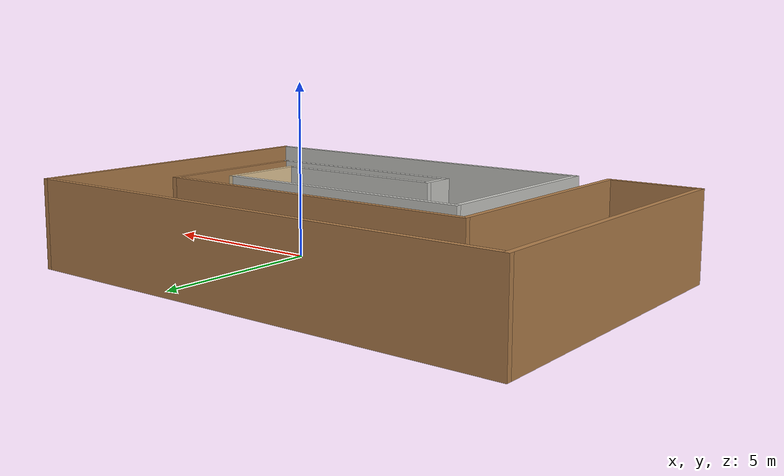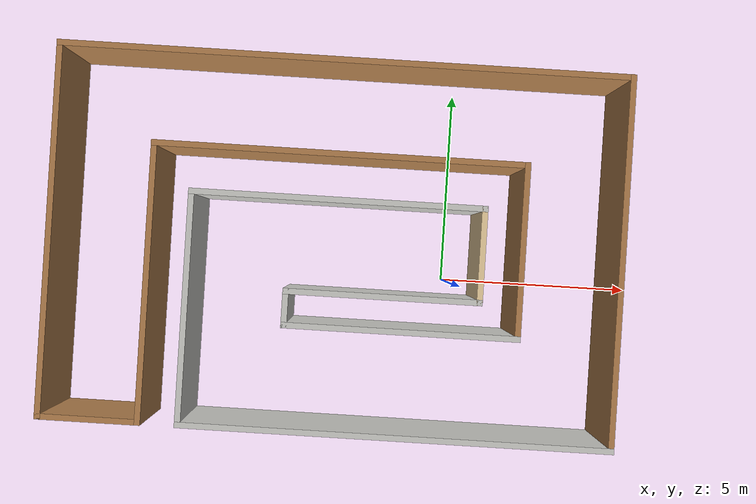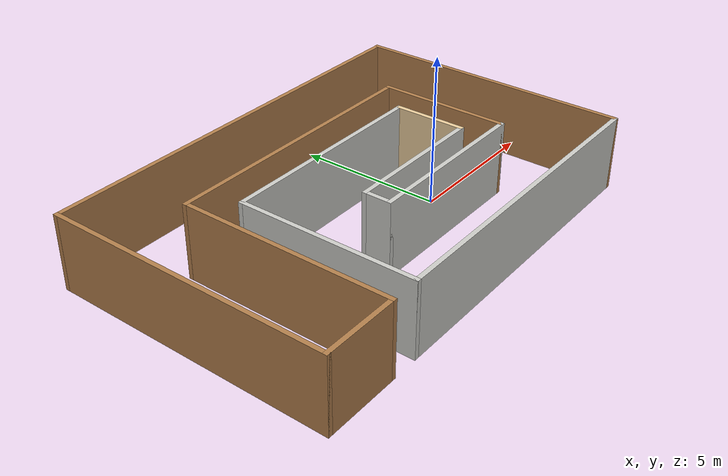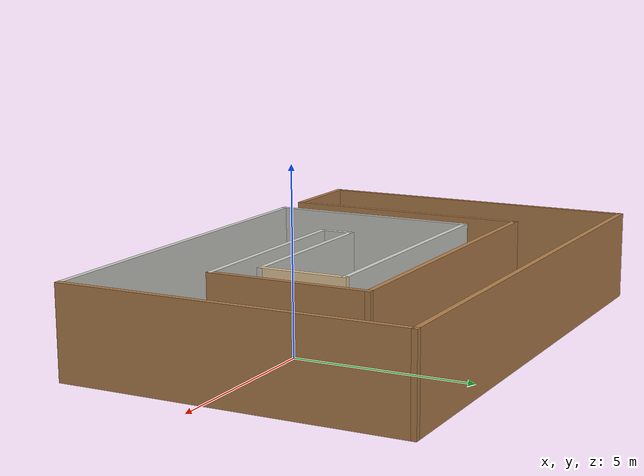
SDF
<?xml version='1.0'?>
<sdf version='1.6'>
  <model name='Play7'>
    <pose frame=''>-2.885 0.715 0 0 -0 0</pose>
    <link name='Wall_0'>
      <collision name='Wall_0_Collision'>
        <geometry>
          <box>
            <size>2.5 0.15 2.5</size>
          </box>
        </geometry>
        <pose frame=''>0 0 1.25 0 -0 0</pose>
      </collision>
      <visual name='Wall_0_Visual'>
        <pose frame=''>0 0 1.25 0 -0 0</pose>
        <geometry>
          <box>
            <size>2.5 0.15 2.5</size>
          </box>
        </geometry>
        <material>
          <script>
            <uri>file://media/materials/scripts/gazebo.material</uri>
            <name>Gazebo/Grey</name>
          </script>
          <ambient>0.921569 0.807843 0.615686 1</ambient>
        </material>
        <meta>
          <layer>0</layer>
        </meta>
      </visual>
      <pose frame=''>3.675 0 0 0 0 -1.5708</pose>
    </link>
    <link name='Wall_10'>
      <collision name='Wall_10_Collision'>
        <geometry>
          <box>
            <size>6 0.15 2.5</size>
          </box>
        </geometry>
        <pose frame=''>0 0 1.25 0 -0 0</pose>
      </collision>
      <visual name='Wall_10_Visual'>
        <pose frame=''>0 0 1.25 0 -0 0</pose>
        <geometry>
          <box>
            <size>6 0.15 2.5</size>
          </box>
        </geometry>
        <material>
          <script>
            <uri>file://media/materials/scripts/gazebo.material</uri>
            <name>Gazebo/CeilingTiled</name>
          </script>
          <ambient>0.921569 0.807843 0.615686 1</ambient>
        </material>
        <meta>
          <layer>0</layer>
        </meta>
      </visual>
      <pose frame=''>1.75 -2.025 0 0 -0 0</pose>
    </link>
    <link name='Wall_13'>
      <collision name='Wall_13_Collision'>
        <geometry>
          <box>
            <size>11 0.15 2.5</size>
          </box>
        </geometry>
        <pose frame=''>0 0 1.25 0 -0 0</pose>
      </collision>
      <visual name='Wall_13_Visual'>
        <pose frame=''>0 0 1.25 0 -0 0</pose>
        <geometry>
          <box>
            <size>11 0.15 2.5</size>
          </box>
        </geometry>
        <material>
          <script>
            <uri>file://media/materials/scripts/gazebo.material</uri>
            <name>Gazebo/CeilingTiled</name>
          </script>
          <ambient>0.921569 0.807843 0.615686 1</ambient>
        </material>
        <meta>
          <layer>0</layer>
        </meta>
      </visual>
      <pose frame=''>1.75 -4.675 0 0 -0 0</pose>
    </link>
    <link name='Wall_15'>
      <collision name='Wall_15_Collision'>
        <geometry>
          <box>
            <size>9.5 0.15 2.5</size>
          </box>
        </geometry>
        <pose frame=''>0 0 1.25 0 -0 0</pose>
      </collision>
      <visual name='Wall_15_Visual'>
        <pose frame=''>0 0 1.25 0 -0 0</pose>
        <geometry>
          <box>
            <size>9.5 0.15 2.5</size>
          </box>
        </geometry>
        <material>
          <script>
            <uri>file://media/materials/scripts/gazebo.material</uri>
            <name>Gazebo/Wood</name>
          </script>
          <ambient>1 1 1 1</ambient>
        </material>
        <meta>
          <layer>0</layer>
        </meta>
      </visual>
      <pose frame=''>7.175 0 0 0 -0 1.5708</pose>
    </link>
    <link name='Wall_17'>
      <collision name='Wall_17_Collision'>
        <geometry>
          <box>
            <size>4.5 0.15 2.5</size>
          </box>
        </geometry>
        <pose frame=''>0 0 1.25 0 -0 0</pose>
      </collision>
      <visual name='Wall_17_Visual'>
        <pose frame=''>0 0 1.25 0 -0 0</pose>
        <geometry>
          <box>
            <size>4.5 0.15 2.5</size>
          </box>
        </geometry>
        <material>
          <script>
            <uri>file://media/materials/scripts/gazebo.material</uri>
            <name>Gazebo/Wood</name>
          </script>
          <ambient>1 1 1 1</ambient>
        </material>
        <meta>
          <layer>0</layer>
        </meta>
      </visual>
      <pose frame=''>4.675 0.15 0 0 -0 1.5708</pose>
    </link>
    <link name='Wall_2'>
      <collision name='Wall_2_Collision'>
        <geometry>
          <box>
            <size>5 0.15 2.5</size>
          </box>
        </geometry>
        <pose frame=''>0 0 1.25 0 -0 0</pose>
      </collision>
      <visual name='Wall_2_Visual'>
        <pose frame=''>0 0 1.25 0 -0 0</pose>
        <geometry>
          <box>
            <size>5 0.15 2.5</size>
          </box>
        </geometry>
        <material>
          <script>
            <uri>file://media/materials/scripts/gazebo.material</uri>
            <name>Gazebo/CeilingTiled</name>
          </script>
          <ambient>0.921569 0.807843 0.615686 1</ambient>
        </material>
        <meta>
          <layer>0</layer>
        </meta>
      </visual>
      <pose frame=''>1.25 -1.175 0 0 -0 3.14159</pose>
    </link>
    <link name='Wall_22'>
      <collision name='Wall_22_Collision'>
        <geometry>
          <box>
            <size>9.5 0.15 2.5</size>
          </box>
        </geometry>
        <pose frame=''>0 0 1.25 0 -0 0</pose>
      </collision>
      <visual name='Wall_22_Visual'>
        <pose frame=''>0 0 1.25 0 -0 0</pose>
        <geometry>
          <box>
            <size>9.5 0.15 2.5</size>
          </box>
        </geometry>
        <material>
          <script>
            <uri>file://media/materials/scripts/gazebo.material</uri>
            <name>Gazebo/Wood</name>
          </script>
          <ambient>1 1 1 1</ambient>
        </material>
        <meta>
          <layer>0</layer>
        </meta>
      </visual>
      <pose frame=''>0 2.325 0 0 -0 3.14159</pose>
    </link>
    <link name='Wall_24'>
      <collision name='Wall_24_Collision'>
        <geometry>
          <box>
            <size>14.5 0.15 2.5</size>
          </box>
        </geometry>
        <pose frame=''>0 0 1.25 0 -0 0</pose>
      </collision>
      <visual name='Wall_24_Visual'>
        <pose frame=''>0 0 1.25 0 -0 0</pose>
        <geometry>
          <box>
            <size>14.5 0.15 2.5</size>
          </box>
        </geometry>
        <material>
          <script>
            <uri>file://media/materials/scripts/gazebo.material</uri>
            <name>Gazebo/Wood</name>
          </script>
          <ambient>1 1 1 1</ambient>
        </material>
        <meta>
          <layer>0</layer>
        </meta>
      </visual>
      <pose frame=''>0 4.675 0 0 -0 3.14159</pose>
    </link>
    <link name='Wall_26'>
      <collision name='Wall_26_Collision'>
        <geometry>
          <box>
            <size>7.15 0.15 2.5</size>
          </box>
        </geometry>
        <pose frame=''>0 0 1.25 0 -0 0</pose>
      </collision>
      <visual name='Wall_26_Visual'>
        <pose frame=''>0 0 1.25 0 -0 0</pose>
        <geometry>
          <box>
            <size>7.15 0.15 2.5</size>
          </box>
        </geometry>
        <material>
          <script>
            <uri>file://media/materials/scripts/gazebo.material</uri>
            <name>Gazebo/Wood</name>
          </script>
          <ambient>1 1 1 1</ambient>
        </material>
        <meta>
          <layer>0</layer>
        </meta>
      </visual>
      <pose frame=''>-4.675 -1.175 0 0 0 -1.5708</pose>
    </link>
    <link name='Wall_28'>
      <collision name='Wall_28_Collision'>
        <geometry>
          <box>
            <size>9.5 0.15 2.5</size>
          </box>
        </geometry>
        <pose frame=''>0 0 1.25 0 -0 0</pose>
      </collision>
      <visual name='Wall_28_Visual'>
        <pose frame=''>0 0 1.25 0 -0 0</pose>
        <geometry>
          <box>
            <size>9.5 0.15 2.5</size>
          </box>
        </geometry>
        <material>
          <script>
            <uri>file://media/materials/scripts/gazebo.material</uri>
            <name>Gazebo/Wood</name>
          </script>
          <ambient>1 1 1 1</ambient>
        </material>
        <meta>
          <layer>0</layer>
        </meta>
      </visual>
      <pose frame=''>-7.175 0 0 0 0 -1.5708</pose>
    </link>
    <link name='Wall_30'>
      <collision name='Wall_30_Collision'>
        <geometry>
          <box>
            <size>2.5 0.15 2.5</size>
          </box>
        </geometry>
        <pose frame=''>0 0 1.25 0 -0 0</pose>
      </collision>
      <visual name='Wall_30_Visual'>
        <pose frame=''>0 0 1.25 0 -0 0</pose>
        <geometry>
          <box>
            <size>2.5 0.15 2.5</size>
          </box>
        </geometry>
        <material>
          <script>
            <uri>file://media/materials/scripts/gazebo.material</uri>
            <name>Gazebo/Wood</name>
          </script>
          <ambient>1 1 1 1</ambient>
        </material>
        <meta>
          <layer>0</layer>
        </meta>
      </visual>
      <pose frame=''>-6 -4.675 0 0 -0 0</pose>
    </link>
    <link name='Wall_4'>
      <collision name='Wall_4_Collision'>
        <geometry>
          <box>
            <size>7.5 0.15 2.5</size>
          </box>
        </geometry>
        <pose frame=''>0 0 1.25 0 -0 0</pose>
      </collision>
      <visual name='Wall_4_Visual'>
        <pose frame=''>0 0 1.25 0 -0 0</pose>
        <geometry>
          <box>
            <size>7.5 0.15 2.5</size>
          </box>
        </geometry>
        <material>
          <script>
            <uri>file://media/materials/scripts/gazebo.material</uri>
            <name>Gazebo/CeilingTiled</name>
          </script>
          <ambient>0.921569 0.807843 0.615686 1</ambient>
        </material>
        <meta>
          <layer>0</layer>
        </meta>
      </visual>
      <pose frame=''>0 1.175 0 0 -0 3.14159</pose>
    </link>
    <link name='Wall_6'>
      <collision name='Wall_6_Collision'>
        <geometry>
          <box>
            <size>1 0.15 2.5</size>
          </box>
        </geometry>
        <pose frame=''>0 0 1.25 0 -0 0</pose>
      </collision>
      <visual name='Wall_6_Visual'>
        <pose frame=''>0 0 1.25 0 -0 0</pose>
        <geometry>
          <box>
            <size>1 0.15 2.5</size>
          </box>
        </geometry>
        <material>
          <script>
            <uri>file://media/materials/scripts/gazebo.material</uri>
            <name>Gazebo/CeilingTiled</name>
          </script>
          <ambient>0.921569 0.807843 0.615686 1</ambient>
        </material>
        <meta>
          <layer>0</layer>
        </meta>
      </visual>
      <pose frame=''>-1.175 -1.6 0 0 0 -1.5708</pose>
    </link>
    <link name='Wall_8'>
      <collision name='Wall_8_Collision'>
        <geometry>
          <box>
            <size>6 0.15 2.5</size>
          </box>
        </geometry>
        <pose frame=''>0 0 1.25 0 -0 0</pose>
      </collision>
      <visual name='Wall_8_Visual'>
        <pose frame=''>0 0 1.25 0 -0 0</pose>
        <geometry>
          <box>
            <size>6 0.15 2.5</size>
          </box>
        </geometry>
        <material>
          <script>
            <uri>file://media/materials/scripts/gazebo.material</uri>
            <name>Gazebo/CeilingTiled</name>
          </script>
          <ambient>0.921569 0.807843 0.615686 1</ambient>
        </material>
        <meta>
          <layer>0</layer>
        </meta>
      </visual>
      <pose frame=''>-3.675 -1.75 0 0 0 -1.5708</pose>
    </link>
    <static>1</static>
  </model>
</sdf>
